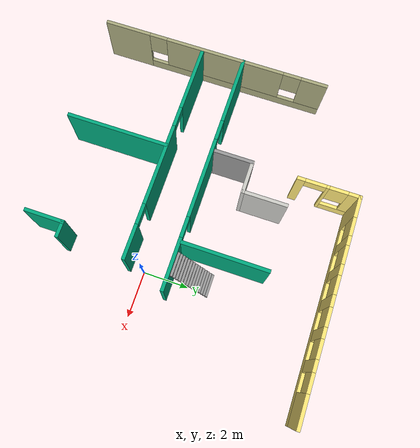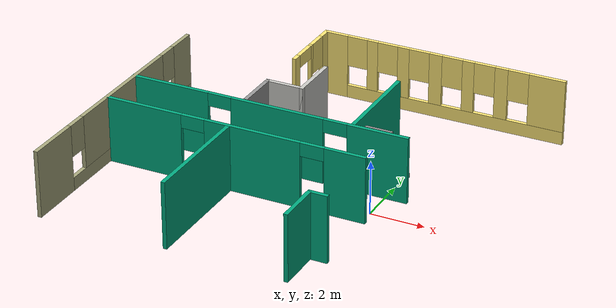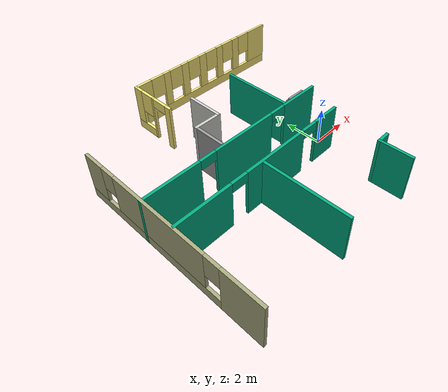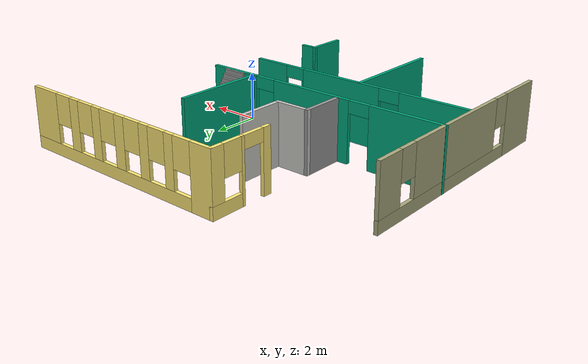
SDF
<sdf version="1.6">
 <model name="MyHouse">
  <pose>0 1.26463 0 0 -0 0</pose>
  <link name="Stairs_0">
   <visual name="Stairs_0_Visual_0">
    <pose>-0.366202 1.61494 0.083333 0 -0 0</pose>
    <geometry><box><size>1 0.106176 0.166667</size></box></geometry>
    <material>
     <script><uri>file://media/materials/scripts/gazebo.material</uri><name>Gazebo/Grey</name></script>
     <ambient>1 1 1 1</ambient>
    </material>
    <meta><layer>0</layer></meta>
   </visual>
   <collision name="Stairs_0_Collision_0">
    <geometry><box><size>1 0.106176 0.166667</size></box></geometry>
    <pose>-0.366202 1.61494 0.083333 0 -0 0</pose>
   </collision>
   <visual name="Stairs_0_Visual_1">
    <pose>-0.366202 1.50876 0.25 0 -0 0</pose>
    <geometry><box><size>1 0.106176 0.166667</size></box></geometry>
    <material>
     <script><uri>file://media/materials/scripts/gazebo.material</uri><name>Gazebo/Grey</name></script>
     <ambient>1 1 1 1</ambient>
    </material>
    <meta><layer>0</layer></meta>
   </visual>
   <collision name="Stairs_0_Collision_1">
    <geometry><box><size>1 0.106176 0.166667</size></box></geometry>
    <pose>-0.366202 1.50876 0.25 0 -0 0</pose>
   </collision>
   <visual name="Stairs_0_Visual_2">
    <pose>-0.366202 1.40258 0.416667 0 -0 0</pose>
    <geometry><box><size>1 0.106176 0.166667</size></box></geometry>
    <material>
     <script><uri>file://media/materials/scripts/gazebo.material</uri><name>Gazebo/Grey</name></script>
     <ambient>1 1 1 1</ambient>
    </material>
    <meta><layer>0</layer></meta>
   </visual>
   <collision name="Stairs_0_Collision_2">
    <geometry><box><size>1 0.106176 0.166667</size></box></geometry>
    <pose>-0.366202 1.40258 0.416667 0 -0 0</pose>
   </collision>
   <visual name="Stairs_0_Visual_3">
    <pose>-0.366202 1.29641 0.583333 0 -0 0</pose>
    <geometry><box><size>1 0.106176 0.166667</size></box></geometry>
    <material>
     <script><uri>file://media/materials/scripts/gazebo.material</uri><name>Gazebo/Grey</name></script>
     <ambient>1 1 1 1</ambient>
    </material>
    <meta><layer>0</layer></meta>
   </visual>
   <collision name="Stairs_0_Collision_3">
    <geometry><box><size>1 0.106176 0.166667</size></box></geometry>
    <pose>-0.366202 1.29641 0.583333 0 -0 0</pose>
   </collision>
   <visual name="Stairs_0_Visual_4">
    <pose>-0.366202 1.19023 0.75 0 -0 0</pose>
    <geometry><box><size>1 0.106176 0.166667</size></box></geometry>
    <material>
     <script><uri>file://media/materials/scripts/gazebo.material</uri><name>Gazebo/Grey</name></script>
     <ambient>1 1 1 1</ambient>
    </material>
    <meta><layer>0</layer></meta>
   </visual>
   <collision name="Stairs_0_Collision_4">
    <geometry><box><size>1 0.106176 0.166667</size></box></geometry>
    <pose>-0.366202 1.19023 0.75 0 -0 0</pose>
   </collision>
   <visual name="Stairs_0_Visual_5">
    <pose>-0.366202 1.08406 0.916667 0 -0 0</pose>
    <geometry><box><size>1 0.106176 0.166667</size></box></geometry>
    <material>
     <script><uri>file://media/materials/scripts/gazebo.material</uri><name>Gazebo/Grey</name></script>
     <ambient>1 1 1 1</ambient>
    </material>
    <meta><layer>0</layer></meta>
   </visual>
   <collision name="Stairs_0_Collision_5">
    <geometry><box><size>1 0.106176 0.166667</size></box></geometry>
    <pose>-0.366202 1.08406 0.916667 0 -0 0</pose>
   </collision>
   <visual name="Stairs_0_Visual_6">
    <pose>-0.366202 0.977881 1.08333 0 -0 0</pose>
    <geometry><box><size>1 0.106176 0.166667</size></box></geometry>
    <material>
     <script><uri>file://media/materials/scripts/gazebo.material</uri><name>Gazebo/Grey</name></script>
     <ambient>1 1 1 1</ambient>
    </material>
    <meta><layer>0</layer></meta>
   </visual>
   <collision name="Stairs_0_Collision_6">
    <geometry><box><size>1 0.106176 0.166667</size></box></geometry>
    <pose>-0.366202 0.977881 1.08333 0 -0 0</pose>
   </collision>
   <visual name="Stairs_0_Visual_7">
    <pose>-0.366202 0.871705 1.25 0 -0 0</pose>
    <geometry><box><size>1 0.106176 0.166667</size></box></geometry>
    <material>
     <script><uri>file://media/materials/scripts/gazebo.material</uri><name>Gazebo/Grey</name></script>
     <ambient>1 1 1 1</ambient>
    </material>
    <meta><layer>0</layer></meta>
   </visual>
   <collision name="Stairs_0_Collision_7">
    <geometry><box><size>1 0.106176 0.166667</size></box></geometry>
    <pose>-0.366202 0.871705 1.25 0 -0 0</pose>
   </collision>
   <visual name="Stairs_0_Visual_8">
    <pose>-0.366202 0.765529 1.41667 0 -0 0</pose>
    <geometry><box><size>1 0.106176 0.166667</size></box></geometry>
    <material>
     <script><uri>file://media/materials/scripts/gazebo.material</uri><name>Gazebo/Grey</name></script>
     <ambient>1 1 1 1</ambient>
    </material>
    <meta><layer>0</layer></meta>
   </visual>
   <collision name="Stairs_0_Collision_8">
    <geometry><box><size>1 0.106176 0.166667</size></box></geometry>
    <pose>-0.366202 0.765529 1.41667 0 -0 0</pose>
   </collision>
   <visual name="Stairs_0_Visual_9">
    <pose>-0.366202 0.659354 1.58333 0 -0 0</pose>
    <geometry><box><size>1 0.106176 0.166667</size></box></geometry>
    <material>
     <script><uri>file://media/materials/scripts/gazebo.material</uri><name>Gazebo/Grey</name></script>
     <ambient>1 1 1 1</ambient>
    </material>
    <meta><layer>0</layer></meta>
   </visual>
   <collision name="Stairs_0_Collision_9">
    <geometry><box><size>1 0.106176 0.166667</size></box></geometry>
    <pose>-0.366202 0.659354 1.58333 0 -0 0</pose>
   </collision>
   <visual name="Stairs_0_Visual_10">
    <pose>-0.366202 0.553178 1.75 0 -0 0</pose>
    <geometry><box><size>1 0.106176 0.166667</size></box></geometry>
    <material>
     <script><uri>file://media/materials/scripts/gazebo.material</uri><name>Gazebo/Grey</name></script>
     <ambient>1 1 1 1</ambient>
    </material>
    <meta><layer>0</layer></meta>
   </visual>
   <collision name="Stairs_0_Collision_10">
    <geometry><box><size>1 0.106176 0.166667</size></box></geometry>
    <pose>-0.366202 0.553178 1.75 0 -0 0</pose>
   </collision>
   <visual name="Stairs_0_Visual_11">
    <pose>-0.366202 0.447002 1.91667 0 -0 0</pose>
    <geometry><box><size>1 0.106176 0.166667</size></box></geometry>
    <material>
     <script><uri>file://media/materials/scripts/gazebo.material</uri><name>Gazebo/Grey</name></script>
     <ambient>1 1 1 1</ambient>
    </material>
    <meta><layer>0</layer></meta>
   </visual>
   <collision name="Stairs_0_Collision_11">
    <geometry><box><size>1 0.106176 0.166667</size></box></geometry>
    <pose>-0.366202 0.447002 1.91667 0 -0 0</pose>
   </collision>
   <visual name="Stairs_0_Visual_12">
    <pose>-0.366202 0.340826 2.08333 0 -0 0</pose>
    <geometry><box><size>1 0.106176 0.166667</size></box></geometry>
    <material>
     <script><uri>file://media/materials/scripts/gazebo.material</uri><name>Gazebo/Grey</name></script>
     <ambient>1 1 1 1</ambient>
    </material>
    <meta><layer>0</layer></meta>
   </visual>
   <collision name="Stairs_0_Collision_12">
    <geometry><box><size>1 0.106176 0.166667</size></box></geometry>
    <pose>-0.366202 0.340826 2.08333 0 -0 0</pose>
   </collision>
   <visual name="Stairs_0_Visual_13">
    <pose>-0.366202 0.234651 2.25 0 -0 0</pose>
    <geometry><box><size>1 0.106176 0.166667</size></box></geometry>
    <material>
     <script><uri>file://media/materials/scripts/gazebo.material</uri><name>Gazebo/Grey</name></script>
     <ambient>1 1 1 1</ambient>
    </material>
    <meta><layer>0</layer></meta>
   </visual>
   <collision name="Stairs_0_Collision_13">
    <geometry><box><size>1 0.106176 0.166667</size></box></geometry>
    <pose>-0.366202 0.234651 2.25 0 -0 0</pose>
   </collision>
   <visual name="Stairs_0_Visual_14">
    <pose>-0.366202 0.128475 2.41667 0 -0 0</pose>
    <geometry><box><size>1 0.106176 0.166667</size></box></geometry>
    <material>
     <script><uri>file://media/materials/scripts/gazebo.material</uri><name>Gazebo/Grey</name></script>
     <ambient>1 1 1 1</ambient>
    </material>
    <meta><layer>0</layer></meta>
   </visual>
   <collision name="Stairs_0_Collision_14">
    <geometry><box><size>1 0.106176 0.166667</size></box></geometry>
    <pose>-0.366202 0.128475 2.41667 0 -0 0</pose>
   </collision>
  </link>
  <link name="Wall_29">
   <pose>-9.85 -1.31462 0 0 -0 1.5708</pose>
   <visual name="Wall_29_Visual_0">
    <pose>-4.08798 0 1.25 0 -0 0</pose>
    <geometry><box><size>2.07404 0.15 2.5</size></box></geometry>
    <material>
     <script><uri>file://media/materials/scripts/gazebo.material</uri><name>Gazebo/Grey</name></script>
     <ambient>0.666667 0.666667 0.498039 1</ambient>
    </material>
    <meta><layer>0</layer></meta>
   </visual>
   <collision name="Wall_29_Collision_0">
    <geometry><box><size>2.07404 0.15 2.5</size></box></geometry>
    <pose>-4.08798 0 1.25 0 -0 0</pose>
   </collision>
   <visual name="Wall_29_Visual_1">
    <pose>1.03702 0 0.25 0 -0 0</pose>
    <geometry><box><size>8.17596 0.15 0.5</size></box></geometry>
    <material>
     <script><uri>file://media/materials/scripts/gazebo.material</uri><name>Gazebo/Grey</name></script>
     <ambient>0.666667 0.666667 0.498039 1</ambient>
    </material>
    <meta><layer>0</layer></meta>
   </visual>
   <collision name="Wall_29_Collision_1">
    <geometry><box><size>8.17596 0.15 0.5</size></box></geometry>
    <pose>1.03702 0 0.25 0 -0 0</pose>
   </collision>
   <visual name="Wall_29_Visual_2">
    <pose>0.441125 0 1.5 0 -0 0</pose>
    <geometry><box><size>5.38417 0.15 2</size></box></geometry>
    <material>
     <script><uri>file://media/materials/scripts/gazebo.material</uri><name>Gazebo/Grey</name></script>
     <ambient>0.666667 0.666667 0.498039 1</ambient>
    </material>
    <meta><layer>0</layer></meta>
   </visual>
   <collision name="Wall_29_Collision_2">
    <geometry><box><size>5.38417 0.15 2</size></box></geometry>
    <pose>0.441125 0 1.5 0 -0 0</pose>
   </collision>
   <visual name="Wall_29_Visual_3">
    <pose>4.5291 0 1.5 0 -0 0</pose>
    <geometry><box><size>1.19179 0.15 2</size></box></geometry>
    <material>
     <script><uri>file://media/materials/scripts/gazebo.material</uri><name>Gazebo/Grey</name></script>
     <ambient>0.666667 0.666667 0.498039 1</ambient>
    </material>
    <meta><layer>0</layer></meta>
   </visual>
   <collision name="Wall_29_Collision_3">
    <geometry><box><size>1.19179 0.15 2</size></box></geometry>
    <pose>4.5291 0 1.5 0 -0 0</pose>
   </collision>
   <visual name="Wall_29_Visual_4">
    <pose>-2.65096 0 1.9 0 -0 0</pose>
    <geometry><box><size>0.8 0.15 1.2</size></box></geometry>
    <material>
     <script><uri>file://media/materials/scripts/gazebo.material</uri><name>Gazebo/Grey</name></script>
     <ambient>0.666667 0.666667 0.498039 1</ambient>
    </material>
    <meta><layer>0</layer></meta>
   </visual>
   <collision name="Wall_29_Collision_4">
    <geometry><box><size>0.8 0.15 1.2</size></box></geometry>
    <pose>-2.65096 0 1.9 0 -0 0</pose>
   </collision>
   <visual name="Wall_29_Visual_5">
    <pose>3.53321 0 1.9 0 -0 0</pose>
    <geometry><box><size>0.8 0.15 1.2</size></box></geometry>
    <material>
     <script><uri>file://media/materials/scripts/gazebo.material</uri><name>Gazebo/Grey</name></script>
     <ambient>0.666667 0.666667 0.498039 1</ambient>
    </material>
    <meta><layer>0</layer></meta>
   </visual>
   <collision name="Wall_29_Collision_5">
    <geometry><box><size>0.8 0.15 1.2</size></box></geometry>
    <pose>3.53321 0 1.9 0 -0 0</pose>
   </collision>
  </link>
  <link name="Wall_31">
   <pose>-4.55879 -0.019108 0 0 -0 0</pose>
   <visual name="Wall_31_Visual_0">
    <pose>-3.83317 0 1.25 0 -0 0</pose>
    <geometry><box><size>3.08365 0.15 2.5</size></box></geometry>
    <material>
     <script><uri>file://media/materials/scripts/gazebo.material</uri><name>Gazebo/Grey</name></script>
     <ambient>0 0.666667 0.498039 1</ambient>
    </material>
    <meta><layer>0</layer></meta>
   </visual>
   <collision name="Wall_31_Collision_0">
    <geometry><box><size>3.08365 0.15 2.5</size></box></geometry>
    <pose>-3.83317 0 1.25 0 -0 0</pose>
   </collision>
   <visual name="Wall_31_Visual_1">
    <pose>0.400374 0 1.25 0 -0 0</pose>
    <geometry><box><size>3.58344 0.15 2.5</size></box></geometry>
    <material>
     <script><uri>file://media/materials/scripts/gazebo.material</uri><name>Gazebo/Grey</name></script>
     <ambient>0 0.666667 0.498039 1</ambient>
    </material>
    <meta><layer>0</layer></meta>
   </visual>
   <collision name="Wall_31_Collision_1">
    <geometry><box><size>3.58344 0.15 2.5</size></box></geometry>
    <pose>0.400374 0 1.25 0 -0 0</pose>
   </collision>
   <visual name="Wall_31_Visual_2">
    <pose>4.23355 0 1.25 0 -0 0</pose>
    <geometry><box><size>2.2829 0.15 2.5</size></box></geometry>
    <material>
     <script><uri>file://media/materials/scripts/gazebo.material</uri><name>Gazebo/Grey</name></script>
     <ambient>0 0.666667 0.498039 1</ambient>
    </material>
    <meta><layer>0</layer></meta>
   </visual>
   <collision name="Wall_31_Collision_2">
    <geometry><box><size>2.2829 0.15 2.5</size></box></geometry>
    <pose>4.23355 0 1.25 0 -0 0</pose>
   </collision>
   <visual name="Wall_31_Visual_3">
    <pose>-1.84135 0 2.25 0 -0 0</pose>
    <geometry><box><size>0.9 0.15 0.5</size></box></geometry>
    <material>
     <script><uri>file://media/materials/scripts/gazebo.material</uri><name>Gazebo/Grey</name></script>
     <ambient>0 0.666667 0.498039 1</ambient>
    </material>
    <meta><layer>0</layer></meta>
   </visual>
   <collision name="Wall_31_Collision_3">
    <geometry><box><size>0.9 0.15 0.5</size></box></geometry>
    <pose>-1.84135 0 2.25 0 -0 0</pose>
   </collision>
   <visual name="Wall_31_Visual_4">
    <pose>2.64209 0 2.25 0 -0 0</pose>
    <geometry><box><size>0.9 0.15 0.5</size></box></geometry>
    <material>
     <script><uri>file://media/materials/scripts/gazebo.material</uri><name>Gazebo/Grey</name></script>
     <ambient>0 0.666667 0.498039 1</ambient>
    </material>
    <meta><layer>0</layer></meta>
   </visual>
   <collision name="Wall_31_Collision_4">
    <geometry><box><size>0.9 0.15 0.5</size></box></geometry>
    <pose>2.64209 0 2.25 0 -0 0</pose>
   </collision>
  </link>
  <link name="Wall_34">
   <pose>-4.87226 -1.89063 0 0 -0 0</pose>
   <visual name="Wall_34_Visual_0">
    <pose>-3.49906 0 1.25 0 -0 0</pose>
    <geometry><box><size>3.00188 0.15 2.5</size></box></geometry>
    <material>
     <script><uri>file://media/materials/scripts/gazebo.material</uri><name>Gazebo/Grey</name></script>
     <ambient>0 0.666667 0.498039 1</ambient>
    </material>
    <meta><layer>0</layer></meta>
   </visual>
   <collision name="Wall_34_Collision_0">
    <geometry><box><size>3.00188 0.15 2.5</size></box></geometry>
    <pose>-3.49906 0 1.25 0 -0 0</pose>
   </collision>
   <visual name="Wall_34_Visual_1">
    <pose>0.730258 0 1.25 0 -0 0</pose>
    <geometry><box><size>3.65675 0.15 2.5</size></box></geometry>
    <material>
     <script><uri>file://media/materials/scripts/gazebo.material</uri><name>Gazebo/Grey</name></script>
     <ambient>0 0.666667 0.498039 1</ambient>
    </material>
    <meta><layer>0</layer></meta>
   </visual>
   <collision name="Wall_34_Collision_1">
    <geometry><box><size>3.65675 0.15 2.5</size></box></geometry>
    <pose>0.730258 0 1.25 0 -0 0</pose>
   </collision>
   <visual name="Wall_34_Visual_2">
    <pose>4.22932 0 1.25 0 -0 0</pose>
    <geometry><box><size>1.54137 0.15 2.5</size></box></geometry>
    <material>
     <script><uri>file://media/materials/scripts/gazebo.material</uri><name>Gazebo/Grey</name></script>
     <ambient>0 0.666667 0.498039 1</ambient>
    </material>
    <meta><layer>0</layer></meta>
   </visual>
   <collision name="Wall_34_Collision_2">
    <geometry><box><size>1.54137 0.15 2.5</size></box></geometry>
    <pose>4.22932 0 1.25 0 -0 0</pose>
   </collision>
   <visual name="Wall_34_Visual_3">
    <pose>-1.54812 0 2.25 0 -0 0</pose>
    <geometry><box><size>0.9 0.15 0.5</size></box></geometry>
    <material>
     <script><uri>file://media/materials/scripts/gazebo.material</uri><name>Gazebo/Grey</name></script>
     <ambient>0 0.666667 0.498039 1</ambient>
    </material>
    <meta><layer>0</layer></meta>
   </visual>
   <collision name="Wall_34_Collision_3">
    <geometry><box><size>0.9 0.15 0.5</size></box></geometry>
    <pose>-1.54812 0 2.25 0 -0 0</pose>
   </collision>
   <visual name="Wall_34_Visual_4">
    <pose>3.00863 0 2.25 0 -0 0</pose>
    <geometry><box><size>0.9 0.15 0.5</size></box></geometry>
    <material>
     <script><uri>file://media/materials/scripts/gazebo.material</uri><name>Gazebo/Grey</name></script>
     <ambient>0 0.666667 0.498039 1</ambient>
    </material>
    <meta><layer>0</layer></meta>
   </visual>
   <collision name="Wall_34_Collision_4">
    <geometry><box><size>0.9 0.15 0.5</size></box></geometry>
    <pose>3.00863 0 2.25 0 -0 0</pose>
   </collision>
  </link>
  <link name="Wall_36">
   <collision name="Wall_36_Collision">
    <geometry><box><size>0.75 0.15 2.5</size></box></geometry>
    <pose>0 0 1.25 0 -0 0</pose>
   </collision>
   <visual name="Wall_36_Visual">
    <pose>0 0 1.25 0 -0 0</pose>
    <geometry><box><size>0.75 0.15 2.5</size></box></geometry>
    <material>
     <script><uri>file://media/materials/scripts/gazebo.material</uri><name>Gazebo/Grey</name></script>
     <ambient>0 0.666667 0.498039 1</ambient>
    </material>
    <meta><layer>0</layer></meta>
   </visual>
   <pose>-0.247259 -4.74063 0 0 -0 3.14159</pose>
  </link>
  <link name="Wall_37">
   <collision name="Wall_37_Collision">
    <geometry><box><size>1.75 0.15 2.5</size></box></geometry>
    <pose>0 0 1.25 0 -0 0</pose>
   </collision>
   <visual name="Wall_37_Visual">
    <pose>0 0 1.25 0 -0 0</pose>
    <geometry><box><size>1.75 0.15 2.5</size></box></geometry>
    <material>
     <script><uri>file://media/materials/scripts/gazebo.material</uri><name>Gazebo/Grey</name></script>
     <ambient>0 0.666667 0.498039 1</ambient>
    </material>
    <meta><layer>0</layer></meta>
   </visual>
   <pose>-0.547259 -5.54063 0 0 0 -1.5708</pose>
  </link>
  <link name="Wall_39">
   <collision name="Wall_39_Collision">
    <geometry><box><size>4.5 0.15 2.5</size></box></geometry>
    <pose>0 0 1.25 0 -0 0</pose>
   </collision>
   <visual name="Wall_39_Visual">
    <pose>0 0 1.25 0 -0 0</pose>
    <geometry><box><size>4.5 0.15 2.5</size></box></geometry>
    <material>
     <script><uri>file://media/materials/scripts/gazebo.material</uri><name>Gazebo/Grey</name></script>
     <ambient>0 0.666667 0.498039 1</ambient>
    </material>
    <meta><layer>0</layer></meta>
   </visual>
   <pose>-5.03708 -4.10632 0 0 0 -1.5708</pose>
  </link>
  <link name="Wall_47">
   <collision name="Wall_47_Collision">
    <geometry><box><size>2 0.15 2.5</size></box></geometry>
    <pose>0 0 1.25 0 -0 0</pose>
   </collision>
   <visual name="Wall_47_Visual">
    <pose>0 0 1.25 0 -0 0</pose>
    <geometry><box><size>2 0.15 2.5</size></box></geometry>
    <material>
     <script><uri>file://media/materials/scripts/gazebo.material</uri><name>Gazebo/CeilingTiled</name></script>
     <ambient>0 0 0 1</ambient>
    </material>
    <meta><layer>0</layer></meta>
   </visual>
   <pose>-4.10132 2.67688 0 0 0 -1.5708</pose>
  </link>
  <link name="Wall_48">
   <collision name="Wall_48_Collision">
    <geometry><box><size>1.5 0.15 2.5</size></box></geometry>
    <pose>0 0 1.25 0 -0 0</pose>
   </collision>
   <visual name="Wall_48_Visual">
    <pose>0 0 1.25 0 -0 0</pose>
    <geometry><box><size>1.5 0.15 2.5</size></box></geometry>
    <material>
     <script><uri>file://media/materials/scripts/gazebo.material</uri><name>Gazebo/CeilingTiled</name></script>
     <ambient>0 0 0 1</ambient>
    </material>
    <meta><layer>0</layer></meta>
   </visual>
   <pose>-4.77632 1.75188 0 0 -0 3.14159</pose>
  </link>
  <link name="Wall_49">
   <collision name="Wall_49_Collision">
    <geometry><box><size>1.75 0.15 2.5</size></box></geometry>
    <pose>0 0 1.25 0 -0 0</pose>
   </collision>
   <visual name="Wall_49_Visual">
    <pose>0 0 1.25 0 -0 0</pose>
    <geometry><box><size>1.75 0.15 2.5</size></box></geometry>
    <material>
     <script><uri>file://media/materials/scripts/gazebo.material</uri><name>Gazebo/Grey</name></script>
     <ambient>0 0 0 1</ambient>
    </material>
    <meta><layer>0</layer></meta>
   </visual>
   <pose>-5.45132 0.951884 0 0 0 -1.5708</pose>
  </link>
  <link name="Wall_51">
   <pose>-5.40325 5.06463 0 0 -0 1.5708</pose>
   <visual name="Wall_51_Visual_0">
    <pose>-1.19633 0 1.25 0 -0 0</pose>
    <geometry><box><size>0.357335 0.15 2.5</size></box></geometry>
    <material>
     <script><uri>file://media/materials/scripts/gazebo.material</uri><name>Gazebo/Grey</name></script>
     <ambient>1 0.913725 0.470588 1</ambient>
    </material>
    <meta><layer>0</layer></meta>
   </visual>
   <collision name="Wall_51_Collision_0">
    <geometry><box><size>0.357335 0.15 2.5</size></box></geometry>
    <pose>-1.19633 0 1.25 0 -0 0</pose>
   </collision>
   <visual name="Wall_51_Visual_1">
    <pose>-0.054441 0 1.25 0 -0 0</pose>
    <geometry><box><size>0.126448 0.15 2.5</size></box></geometry>
    <material>
     <script><uri>file://media/materials/scripts/gazebo.material</uri><name>Gazebo/Grey</name></script>
     <ambient>1 0.913725 0.470588 1</ambient>
    </material>
    <meta><layer>0</layer></meta>
   </visual>
   <collision name="Wall_51_Collision_1">
    <geometry><box><size>0.126448 0.15 2.5</size></box></geometry>
    <pose>-0.054441 0 1.25 0 -0 0</pose>
   </collision>
   <visual name="Wall_51_Visual_2">
    <pose>0.691891 0 0.25 0 -0 0</pose>
    <geometry><box><size>1.36622 0.15 0.5</size></box></geometry>
    <material>
     <script><uri>file://media/materials/scripts/gazebo.material</uri><name>Gazebo/Grey</name></script>
     <ambient>1 0.913725 0.470588 1</ambient>
    </material>
    <meta><layer>0</layer></meta>
   </visual>
   <collision name="Wall_51_Collision_2">
    <geometry><box><size>1.36622 0.15 0.5</size></box></geometry>
    <pose>0.691891 0 0.25 0 -0 0</pose>
   </collision>
   <visual name="Wall_51_Visual_3">
    <pose>1.09189 0 1.5 0 -0 0</pose>
    <geometry><box><size>0.566217 0.15 2</size></box></geometry>
    <material>
     <script><uri>file://media/materials/scripts/gazebo.material</uri><name>Gazebo/Grey</name></script>
     <ambient>1 0.913725 0.470588 1</ambient>
    </material>
    <meta><layer>0</layer></meta>
   </visual>
   <collision name="Wall_51_Collision_3">
    <geometry><box><size>0.566217 0.15 2</size></box></geometry>
    <pose>1.09189 0 1.5 0 -0 0</pose>
   </collision>
   <visual name="Wall_51_Visual_4">
    <pose>0.408783 0 1.9 0 -0 0</pose>
    <geometry><box><size>0.8 0.15 1.2</size></box></geometry>
    <material>
     <script><uri>file://media/materials/scripts/gazebo.material</uri><name>Gazebo/Grey</name></script>
     <ambient>1 0.913725 0.470588 1</ambient>
    </material>
    <meta><layer>0</layer></meta>
   </visual>
   <collision name="Wall_51_Collision_4">
    <geometry><box><size>0.8 0.15 1.2</size></box></geometry>
    <pose>0.408783 0 1.9 0 -0 0</pose>
   </collision>
   <visual name="Wall_51_Visual_5">
    <pose>-0.567665 0 2.25 0 -0 0</pose>
    <geometry><box><size>0.9 0.15 0.5</size></box></geometry>
    <material>
     <script><uri>file://media/materials/scripts/gazebo.material</uri><name>Gazebo/Grey</name></script>
     <ambient>1 0.913725 0.470588 1</ambient>
    </material>
    <meta><layer>0</layer></meta>
   </visual>
   <collision name="Wall_51_Collision_5">
    <geometry><box><size>0.9 0.15 0.5</size></box></geometry>
    <pose>-0.567665 0 2.25 0 -0 0</pose>
   </collision>
  </link>
  <link name="Wall_52">
   <pose>-0.728246 6.36463 0 0 -0 0</pose>
   <visual name="Wall_52_Visual_0">
    <pose>-4.26154 0 1.25 0 -0 0</pose>
    <geometry><box><size>0.97693 0.15 2.5</size></box></geometry>
    <material>
     <script><uri>file://media/materials/scripts/gazebo.material</uri><name>Gazebo/Grey</name></script>
     <ambient>1 0.913725 0.470588 1</ambient>
    </material>
    <meta><layer>0</layer></meta>
   </visual>
   <collision name="Wall_52_Collision_0">
    <geometry><box><size>0.97693 0.15 2.5</size></box></geometry>
    <pose>-4.26154 0 1.25 0 -0 0</pose>
   </collision>
   <visual name="Wall_52_Visual_1">
    <pose>0.488465 0 0.25 0 -0 0</pose>
    <geometry><box><size>8.52307 0.15 0.5</size></box></geometry>
    <material>
     <script><uri>file://media/materials/scripts/gazebo.material</uri><name>Gazebo/Grey</name></script>
     <ambient>1 0.913725 0.470588 1</ambient>
    </material>
    <meta><layer>0</layer></meta>
   </visual>
   <collision name="Wall_52_Collision_1">
    <geometry><box><size>8.52307 0.15 0.5</size></box></geometry>
    <pose>0.488465 0 0.25 0 -0 0</pose>
   </collision>
   <visual name="Wall_52_Visual_2">
    <pose>-2.76279 0 1.5 0 -0 0</pose>
    <geometry><box><size>0.420559 0.15 2</size></box></geometry>
    <material>
     <script><uri>file://media/materials/scripts/gazebo.material</uri><name>Gazebo/Grey</name></script>
     <ambient>1 0.913725 0.470588 1</ambient>
    </material>
    <meta><layer>0</layer></meta>
   </visual>
   <collision name="Wall_52_Collision_2">
    <geometry><box><size>0.420559 0.15 2</size></box></geometry>
    <pose>-2.76279 0 1.5 0 -0 0</pose>
   </collision>
   <visual name="Wall_52_Visual_3">
    <pose>-1.52189 0 1.5 0 -0 0</pose>
    <geometry><box><size>0.461245 0.15 2</size></box></geometry>
    <material>
     <script><uri>file://media/materials/scripts/gazebo.material</uri><name>Gazebo/Grey</name></script>
     <ambient>1 0.913725 0.470588 1</ambient>
    </material>
    <meta><layer>0</layer></meta>
   </visual>
   <collision name="Wall_52_Collision_3">
    <geometry><box><size>0.461245 0.15 2</size></box></geometry>
    <pose>-1.52189 0 1.5 0 -0 0</pose>
   </collision>
   <visual name="Wall_52_Visual_4">
    <pose>-0.240301 0 1.5 0 -0 0</pose>
    <geometry><box><size>0.50193 0.15 2</size></box></geometry>
    <material>
     <script><uri>file://media/materials/scripts/gazebo.material</uri><name>Gazebo/Grey</name></script>
     <ambient>1 0.913725 0.470588 1</ambient>
    </material>
    <meta><layer>0</layer></meta>
   </visual>
   <collision name="Wall_52_Collision_4">
    <geometry><box><size>0.50193 0.15 2</size></box></geometry>
    <pose>-0.240301 0 1.5 0 -0 0</pose>
   </collision>
   <visual name="Wall_52_Visual_5">
    <pose>1.04129 0 1.5 0 -0 0</pose>
    <geometry><box><size>0.461245 0.15 2</size></box></geometry>
    <material>
     <script><uri>file://media/materials/scripts/gazebo.material</uri><name>Gazebo/Grey</name></script>
     <ambient>1 0.913725 0.470588 1</ambient>
    </material>
    <meta><layer>0</layer></meta>
   </visual>
   <collision name="Wall_52_Collision_5">
    <geometry><box><size>0.461245 0.15 2</size></box></geometry>
    <pose>1.04129 0 1.5 0 -0 0</pose>
   </collision>
   <visual name="Wall_52_Visual_6">
    <pose>2.32287 0 1.5 0 -0 0</pose>
    <geometry><box><size>0.50193 0.15 2</size></box></geometry>
    <material>
     <script><uri>file://media/materials/scripts/gazebo.material</uri><name>Gazebo/Grey</name></script>
     <ambient>1 0.913725 0.470588 1</ambient>
    </material>
    <meta><layer>0</layer></meta>
   </visual>
   <collision name="Wall_52_Collision_6">
    <geometry><box><size>0.50193 0.15 2</size></box></geometry>
    <pose>2.32287 0 1.5 0 -0 0</pose>
   </collision>
   <visual name="Wall_52_Visual_7">
    <pose>4.06192 0 1.5 0 -0 0</pose>
    <geometry><box><size>1.37616 0.15 2</size></box></geometry>
    <material>
     <script><uri>file://media/materials/scripts/gazebo.material</uri><name>Gazebo/Grey</name></script>
     <ambient>1 0.913725 0.470588 1</ambient>
    </material>
    <meta><layer>0</layer></meta>
   </visual>
   <collision name="Wall_52_Collision_7">
    <geometry><box><size>1.37616 0.15 2</size></box></geometry>
    <pose>4.06192 0 1.5 0 -0 0</pose>
   </collision>
   <visual name="Wall_52_Visual_8">
    <pose>-3.37307 0 1.9 0 -0 0</pose>
    <geometry><box><size>0.8 0.15 1.2</size></box></geometry>
    <material>
     <script><uri>file://media/materials/scripts/gazebo.material</uri><name>Gazebo/Grey</name></script>
     <ambient>1 0.913725 0.470588 1</ambient>
    </material>
    <meta><layer>0</layer></meta>
   </visual>
   <collision name="Wall_52_Collision_8">
    <geometry><box><size>0.8 0.15 1.2</size></box></geometry>
    <pose>-3.37307 0 1.9 0 -0 0</pose>
   </collision>
   <visual name="Wall_52_Visual_9">
    <pose>-2.15251 0 1.9 0 -0 0</pose>
    <geometry><box><size>0.8 0.15 1.2</size></box></geometry>
    <material>
     <script><uri>file://media/materials/scripts/gazebo.material</uri><name>Gazebo/Grey</name></script>
     <ambient>1 0.913725 0.470588 1</ambient>
    </material>
    <meta><layer>0</layer></meta>
   </visual>
   <collision name="Wall_52_Collision_9">
    <geometry><box><size>0.8 0.15 1.2</size></box></geometry>
    <pose>-2.15251 0 1.9 0 -0 0</pose>
   </collision>
   <visual name="Wall_52_Visual_10">
    <pose>-0.891266 0 1.9 0 -0 0</pose>
    <geometry><box><size>0.8 0.15 1.2</size></box></geometry>
    <material>
     <script><uri>file://media/materials/scripts/gazebo.material</uri><name>Gazebo/Grey</name></script>
     <ambient>1 0.913725 0.470588 1</ambient>
    </material>
    <meta><layer>0</layer></meta>
   </visual>
   <collision name="Wall_52_Collision_10">
    <geometry><box><size>0.8 0.15 1.2</size></box></geometry>
    <pose>-0.891266 0 1.9 0 -0 0</pose>
   </collision>
   <visual name="Wall_52_Visual_11">
    <pose>0.410664 0 1.9 0 -0 0</pose>
    <geometry><box><size>0.8 0.15 1.2</size></box></geometry>
    <material>
     <script><uri>file://media/materials/scripts/gazebo.material</uri><name>Gazebo/Grey</name></script>
     <ambient>1 0.913725 0.470588 1</ambient>
    </material>
    <meta><layer>0</layer></meta>
   </visual>
   <collision name="Wall_52_Collision_11">
    <geometry><box><size>0.8 0.15 1.2</size></box></geometry>
    <pose>0.410664 0 1.9 0 -0 0</pose>
   </collision>
   <visual name="Wall_52_Visual_12">
    <pose>1.67191 0 1.9 0 -0 0</pose>
    <geometry><box><size>0.8 0.15 1.2</size></box></geometry>
    <material>
     <script><uri>file://media/materials/scripts/gazebo.material</uri><name>Gazebo/Grey</name></script>
     <ambient>1 0.913725 0.470588 1</ambient>
    </material>
    <meta><layer>0</layer></meta>
   </visual>
   <collision name="Wall_52_Collision_12">
    <geometry><box><size>0.8 0.15 1.2</size></box></geometry>
    <pose>1.67191 0 1.9 0 -0 0</pose>
   </collision>
   <visual name="Wall_52_Visual_13">
    <pose>2.97384 0 1.9 0 -0 0</pose>
    <geometry><box><size>0.8 0.15 1.2</size></box></geometry>
    <material>
     <script><uri>file://media/materials/scripts/gazebo.material</uri><name>Gazebo/Grey</name></script>
     <ambient>1 0.913725 0.470588 1</ambient>
    </material>
    <meta><layer>0</layer></meta>
   </visual>
   <collision name="Wall_52_Collision_13">
    <geometry><box><size>0.8 0.15 1.2</size></box></geometry>
    <pose>2.97384 0 1.9 0 -0 0</pose>
   </collision>
  </link>
  <link name="Wall_79">
   <collision name="Wall_79_Collision">
    <geometry><box><size>3.75 0.15 2.5</size></box></geometry>
    <pose>0 0 1.25 0 -0 0</pose>
   </collision>
   <visual name="Wall_79_Visual">
    <pose>0 0 1.25 0 -0 0</pose>
    <geometry><box><size>3.75 0.15 2.5</size></box></geometry>
    <material>
     <script><uri>file://media/materials/scripts/gazebo.material</uri><name>Gazebo/Grey</name></script>
     <ambient>0 0.666667 0.498039 1</ambient>
    </material>
    <meta><layer>0</layer></meta>
   </visual>
   <pose>-1.28912 1.90199 0 0 0 -1.5708</pose>
  </link>
  <static>1</static>
 </model>
</sdf>
